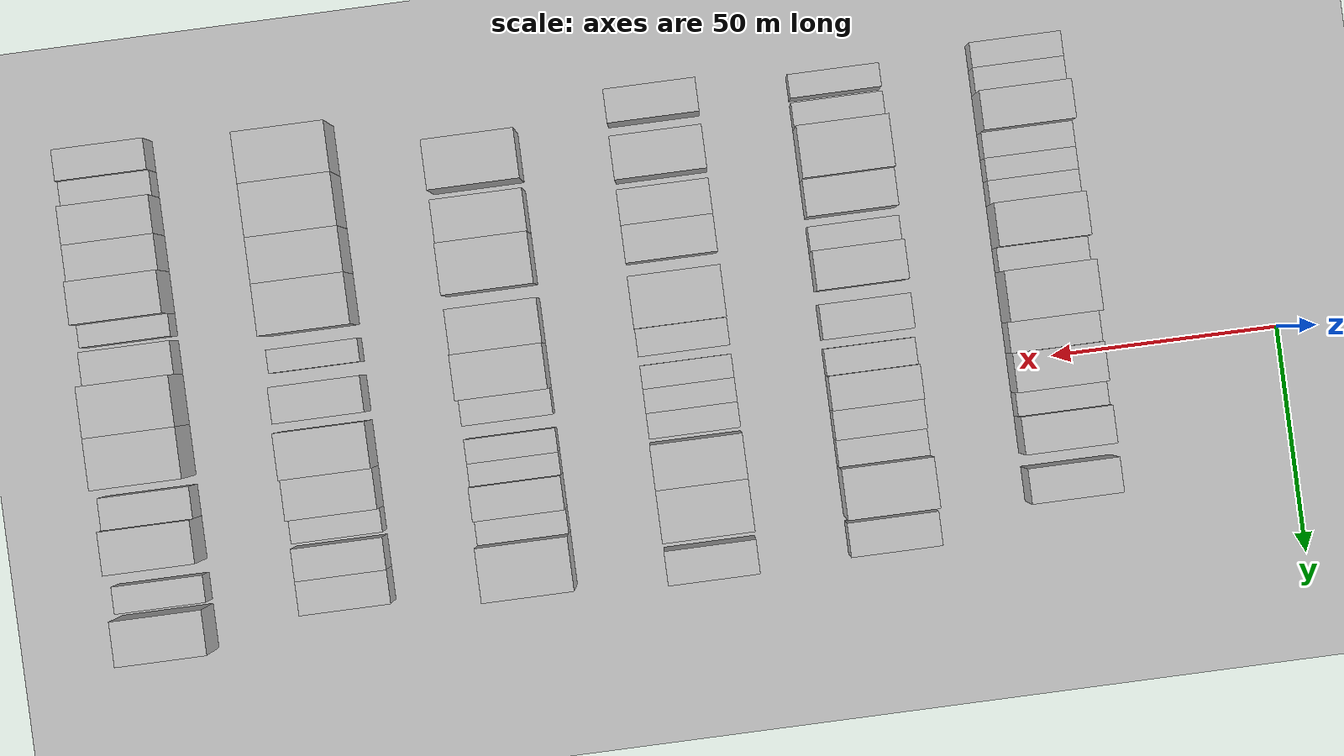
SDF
<sdf version="1.6">
 <world name="default">
  <include><name>ground_plane_1</name><uri>model://HANNAS_ground_plane</uri></include>
  <include>
   <name>ground_plane_2</name>
   <uri>model://HANNAS_ground_plane</uri>
   <pose>100 0 0  0 0 0</pose>
  </include>
  <model name="building_63">
   <static>1</static>
   <pose>50.0000 -67.2292 0 0.000000 0.000000 0.000000</pose>
   <link name="link">
    <pose>0 0 6.00 0 0 0</pose>
    <collision name="collision"><geometry><box><size>20.0000 5.4994 12.0000</size></box></geometry></collision>
    <visual name="visual">
     <cast_shadows>0</cast_shadows>
     <geometry><box><size>20.0000 5.4994 12.0000</size></box></geometry>
     <material>
      <script>
       <uri>model://HANNAS_wall/materials/scripts</uri>
       <uri>model://HANNAS_wall/materials/textures</uri>
       <name>vrc/HANNAS_wall</name>
      </script>
     </material>
    </visual>
   </link>
  </model>
  <model name="building_64">
   <static>1</static>
   <pose>50.0000 -61.6711 0 0.000000 0.000000 0.000000</pose>
   <link name="link">
    <pose>0 0 6.00 0 0 0</pose>
    <collision name="collision"><geometry><box><size>20.0000 5.6170 12.0000</size></box></geometry></collision>
    <visual name="visual">
     <cast_shadows>0</cast_shadows>
     <geometry><box><size>20.0000 5.6170 12.0000</size></box></geometry>
     <material>
      <script>
       <uri>model://HANNAS_wall/materials/scripts</uri>
       <uri>model://HANNAS_wall/materials/textures</uri>
       <name>vrc/HANNAS_wall</name>
      </script>
     </material>
    </visual>
   </link>
  </model>
  <model name="building_65">
   <static>1</static>
   <pose>50.0000 -54.5869 0 0.000000 0.000000 0.000000</pose>
   <link name="link">
    <pose>0 0 10.50 0 0 0</pose>
    <collision name="collision"><geometry><box><size>20.0000 8.5513 21.0000</size></box></geometry></collision>
    <visual name="visual">
     <cast_shadows>0</cast_shadows>
     <geometry><box><size>20.0000 8.5513 21.0000</size></box></geometry>
     <material>
      <script>
       <uri>model://HANNAS_wall/materials/scripts</uri>
       <uri>model://HANNAS_wall/materials/textures</uri>
       <name>vrc/HANNAS_wall</name>
      </script>
     </material>
    </visual>
   </link>
  </model>
  <model name="building_66">
   <static>1</static>
   <pose>50.0000 -47.4905 0 0.000000 0.000000 0.000000</pose>
   <link name="link">
    <pose>0 0 6.00 0 0 0</pose>
    <collision name="collision"><geometry><box><size>20.0000 5.6415 12.0000</size></box></geometry></collision>
    <visual name="visual">
     <cast_shadows>0</cast_shadows>
     <geometry><box><size>20.0000 5.6415 12.0000</size></box></geometry>
     <material>
      <script>
       <uri>model://HANNAS_wall/materials/scripts</uri>
       <uri>model://HANNAS_wall/materials/textures</uri>
       <name>vrc/HANNAS_wall</name>
      </script>
     </material>
    </visual>
   </link>
  </model>
  <model name="building_67">
   <static>1</static>
   <pose>50.0000 -42.1995 0 0.000000 0.000000 0.000000</pose>
   <link name="link">
    <pose>0 0 6.00 0 0 0</pose>
    <collision name="collision"><geometry><box><size>20.0000 4.9405 12.0000</size></box></geometry></collision>
    <visual name="visual">
     <cast_shadows>0</cast_shadows>
     <geometry><box><size>20.0000 4.9405 12.0000</size></box></geometry>
     <material>
      <script>
       <uri>model://HANNAS_wall/materials/scripts</uri>
       <uri>model://HANNAS_wall/materials/textures</uri>
       <name>vrc/HANNAS_wall</name>
      </script>
     </material>
    </visual>
   </link>
  </model>
  <model name="building_68">
   <static>1</static>
   <pose>50.0000 -37.1400 0 0.000000 0.000000 0.000000</pose>
   <link name="link">
    <pose>0 0 6.00 0 0 0</pose>
    <collision name="collision"><geometry><box><size>20.0000 5.1787 12.0000</size></box></geometry></collision>
    <visual name="visual">
     <cast_shadows>0</cast_shadows>
     <geometry><box><size>20.0000 5.1787 12.0000</size></box></geometry>
     <material>
      <script>
       <uri>model://HANNAS_wall/materials/scripts</uri>
       <uri>model://HANNAS_wall/materials/textures</uri>
       <name>vrc/HANNAS_wall</name>
      </script>
     </material>
    </visual>
   </link>
  </model>
  <model name="building_69">
   <static>1</static>
   <pose>50.0000 -29.8016 0 0.000000 0.000000 0.000000</pose>
   <link name="link">
    <pose>0 0 10.50 0 0 0</pose>
    <collision name="collision"><geometry><box><size>20.0000 9.4980 21.0000</size></box></geometry></collision>
    <visual name="visual">
     <cast_shadows>0</cast_shadows>
     <geometry><box><size>20.0000 9.4980 21.0000</size></box></geometry>
     <material>
      <script>
       <uri>model://HANNAS_wall/materials/scripts</uri>
       <uri>model://HANNAS_wall/materials/textures</uri>
       <name>vrc/HANNAS_wall</name>
      </script>
     </material>
    </visual>
   </link>
  </model>
  <model name="building_70">
   <static>1</static>
   <pose>50.0000 -22.4145 0 0.000000 0.000000 0.000000</pose>
   <link name="link">
    <pose>0 0 6.00 0 0 0</pose>
    <collision name="collision"><geometry><box><size>20.0000 5.2761 12.0000</size></box></geometry></collision>
    <visual name="visual">
     <cast_shadows>0</cast_shadows>
     <geometry><box><size>20.0000 5.2761 12.0000</size></box></geometry>
     <material>
      <script>
       <uri>model://HANNAS_wall/materials/scripts</uri>
       <uri>model://HANNAS_wall/materials/textures</uri>
       <name>vrc/HANNAS_wall</name>
      </script>
     </material>
    </visual>
   </link>
  </model>
  <model name="building_71">
   <static>1</static>
   <pose>50.0000 -14.2594 0 0.000000 0.000000 0.000000</pose>
   <link name="link">
    <pose>0 0 12.00 0 0 0</pose>
    <collision name="collision"><geometry><box><size>20.0000 11.0341 24.0000</size></box></geometry></collision>
    <visual name="visual">
     <cast_shadows>0</cast_shadows>
     <geometry><box><size>20.0000 11.0341 24.0000</size></box></geometry>
     <material>
      <script>
       <uri>model://HANNAS_wall/materials/scripts</uri>
       <uri>model://HANNAS_wall/materials/textures</uri>
       <name>vrc/HANNAS_wall</name>
      </script>
     </material>
    </visual>
   </link>
  </model>
  <model name="building_72">
   <static>1</static>
   <pose>50.0000 -5.3640 0 0.000000 0.000000 0.000000</pose>
   <link name="link">
    <pose>0 0 7.50 0 0 0</pose>
    <collision name="collision"><geometry><box><size>20.0000 6.7568 15.0000</size></box></geometry></collision>
    <visual name="visual">
     <cast_shadows>0</cast_shadows>
     <geometry><box><size>20.0000 6.7568 15.0000</size></box></geometry>
     <material>
      <script>
       <uri>model://HANNAS_wall/materials/scripts</uri>
       <uri>model://HANNAS_wall/materials/textures</uri>
       <name>vrc/HANNAS_wall</name>
      </script>
     </material>
    </visual>
   </link>
  </model>
  <model name="building_73">
   <static>1</static>
   <pose>50.0000 2.3063 0 0.000000 0.000000 0.000000</pose>
   <link name="link">
    <pose>0 0 9.00 0 0 0</pose>
    <collision name="collision"><geometry><box><size>20.0000 8.5839 18.0000</size></box></geometry></collision>
    <visual name="visual">
     <cast_shadows>0</cast_shadows>
     <geometry><box><size>20.0000 8.5839 18.0000</size></box></geometry>
     <material>
      <script>
       <uri>model://HANNAS_wall/materials/scripts</uri>
       <uri>model://HANNAS_wall/materials/textures</uri>
       <name>vrc/HANNAS_wall</name>
      </script>
     </material>
    </visual>
   </link>
  </model>
  <model name="building_74">
   <static>1</static>
   <pose>50.0000 9.2249 0 0.000000 0.000000 0.000000</pose>
   <link name="link">
    <pose>0 0 6.00 0 0 0</pose>
    <collision name="collision"><geometry><box><size>20.0000 5.2533 12.0000</size></box></geometry></collision>
    <visual name="visual">
     <cast_shadows>0</cast_shadows>
     <geometry><box><size>20.0000 5.2533 12.0000</size></box></geometry>
     <material>
      <script>
       <uri>model://HANNAS_wall/materials/scripts</uri>
       <uri>model://HANNAS_wall/materials/textures</uri>
       <name>vrc/HANNAS_wall</name>
      </script>
     </material>
    </visual>
   </link>
  </model>
  <model name="building_75">
   <static>1</static>
   <pose>50.0000 15.9710 0 0.000000 0.000000 0.000000</pose>
   <link name="link">
    <pose>0 0 9.00 0 0 0</pose>
    <collision name="collision"><geometry><box><size>20.0000 8.2388 18.0000</size></box></geometry></collision>
    <visual name="visual">
     <cast_shadows>0</cast_shadows>
     <geometry><box><size>20.0000 8.2388 18.0000</size></box></geometry>
     <material>
      <script>
       <uri>model://HANNAS_wall/materials/scripts</uri>
       <uri>model://HANNAS_wall/materials/textures</uri>
       <name>vrc/HANNAS_wall</name>
      </script>
     </material>
    </visual>
   </link>
  </model>
  <model name="building_76">
   <static>1</static>
   <pose>50.0000 26.9386 0 0.000000 0.000000 0.000000</pose>
   <link name="link">
    <pose>0 0 9.00 0 0 0</pose>
    <collision name="collision"><geometry><box><size>20.0000 7.6965 18.0000</size></box></geometry></collision>
    <visual name="visual">
     <cast_shadows>0</cast_shadows>
     <geometry><box><size>20.0000 7.6965 18.0000</size></box></geometry>
     <material>
      <script>
       <uri>model://HANNAS_wall/materials/scripts</uri>
       <uri>model://HANNAS_wall/materials/textures</uri>
       <name>vrc/HANNAS_wall</name>
      </script>
     </material>
    </visual>
   </link>
  </model>
  <model name="building_195">
   <static>1</static>
   <pose>90.0000 -65.6910 0 0.000000 0.000000 0.000000</pose>
   <link name="link">
    <pose>0 0 6.00 0 0 0</pose>
    <collision name="collision"><geometry><box><size>20.0000 5.1898 12.0000</size></box></geometry></collision>
    <visual name="visual">
     <cast_shadows>0</cast_shadows>
     <geometry><box><size>20.0000 5.1898 12.0000</size></box></geometry>
     <material>
      <script>
       <uri>model://HANNAS_wall/materials/scripts</uri>
       <uri>model://HANNAS_wall/materials/textures</uri>
       <name>vrc/HANNAS_wall</name>
      </script>
     </material>
    </visual>
   </link>
  </model>
  <model name="building_196">
   <static>1</static>
   <pose>90.0000 -59.2433 0 0.000000 0.000000 0.000000</pose>
   <link name="link">
    <pose>0 0 6.00 0 0 0</pose>
    <collision name="collision"><geometry><box><size>20.0000 5.7056 12.0000</size></box></geometry></collision>
    <visual name="visual">
     <cast_shadows>0</cast_shadows>
     <geometry><box><size>20.0000 5.7056 12.0000</size></box></geometry>
     <material>
      <script>
       <uri>model://HANNAS_wall/materials/scripts</uri>
       <uri>model://HANNAS_wall/materials/textures</uri>
       <name>vrc/HANNAS_wall</name>
      </script>
     </material>
    </visual>
   </link>
  </model>
  <model name="building_197">
   <static>1</static>
   <pose>90.0000 -50.7142 0 0.000000 0.000000 0.000000</pose>
   <link name="link">
    <pose>0 0 12.00 0 0 0</pose>
    <collision name="collision"><geometry><box><size>20.0000 11.3527 24.0000</size></box></geometry></collision>
    <visual name="visual">
     <cast_shadows>0</cast_shadows>
     <geometry><box><size>20.0000 11.3527 24.0000</size></box></geometry>
     <material>
      <script>
       <uri>model://HANNAS_wall/materials/scripts</uri>
       <uri>model://HANNAS_wall/materials/textures</uri>
       <name>vrc/HANNAS_wall</name>
      </script>
     </material>
    </visual>
   </link>
  </model>
  <model name="building_198">
   <static>1</static>
   <pose>90.0000 -40.9774 0 0.000000 0.000000 0.000000</pose>
   <link name="link">
    <pose>0 0 9.00 0 0 0</pose>
    <collision name="collision"><geometry><box><size>20.0000 8.1209 18.0000</size></box></geometry></collision>
    <visual name="visual">
     <cast_shadows>0</cast_shadows>
     <geometry><box><size>20.0000 8.1209 18.0000</size></box></geometry>
     <material>
      <script>
       <uri>model://HANNAS_wall/materials/scripts</uri>
       <uri>model://HANNAS_wall/materials/textures</uri>
       <name>vrc/HANNAS_wall</name>
      </script>
     </material>
    </visual>
   </link>
  </model>
  <model name="building_199">
   <static>1</static>
   <pose>90.0000 -32.1751 0 0.000000 0.000000 0.000000</pose>
   <link name="link">
    <pose>0 0 6.00 0 0 0</pose>
    <collision name="collision"><geometry><box><size>20.0000 5.4838 12.0000</size></box></geometry></collision>
    <visual name="visual">
     <cast_shadows>0</cast_shadows>
     <geometry><box><size>20.0000 5.4838 12.0000</size></box></geometry>
     <material>
      <script>
       <uri>model://HANNAS_wall/materials/scripts</uri>
       <uri>model://HANNAS_wall/materials/textures</uri>
       <name>vrc/HANNAS_wall</name>
      </script>
     </material>
    </visual>
   </link>
  </model>
  <model name="building_200">
   <static>1</static>
   <pose>90.0000 -25.1378 0 0.000000 0.000000 0.000000</pose>
   <link name="link">
    <pose>0 0 10.50 0 0 0</pose>
    <collision name="collision"><geometry><box><size>20.0000 8.5907 21.0000</size></box></geometry></collision>
    <visual name="visual">
     <cast_shadows>0</cast_shadows>
     <geometry><box><size>20.0000 8.5907 21.0000</size></box></geometry>
     <material>
      <script>
       <uri>model://HANNAS_wall/materials/scripts</uri>
       <uri>model://HANNAS_wall/materials/textures</uri>
       <name>vrc/HANNAS_wall</name>
      </script>
     </material>
    </visual>
   </link>
  </model>
  <model name="building_201">
   <static>1</static>
   <pose>90.0000 -14.0158 0 0.000000 0.000000 0.000000</pose>
   <link name="link">
    <pose>0 0 9.00 0 0 0</pose>
    <collision name="collision"><geometry><box><size>20.0000 7.6533 18.0000</size></box></geometry></collision>
    <visual name="visual">
     <cast_shadows>0</cast_shadows>
     <geometry><box><size>20.0000 7.6533 18.0000</size></box></geometry>
     <material>
      <script>
       <uri>model://HANNAS_wall/materials/scripts</uri>
       <uri>model://HANNAS_wall/materials/textures</uri>
       <name>vrc/HANNAS_wall</name>
      </script>
     </material>
    </visual>
   </link>
  </model>
  <model name="building_202">
   <static>1</static>
   <pose>90.0000 -5.2425 0 0.000000 0.000000 0.000000</pose>
   <link name="link">
    <pose>0 0 6.00 0 0 0</pose>
    <collision name="collision"><geometry><box><size>20.0000 5.8933 12.0000</size></box></geometry></collision>
    <visual name="visual">
     <cast_shadows>0</cast_shadows>
     <geometry><box><size>20.0000 5.8933 12.0000</size></box></geometry>
     <material>
      <script>
       <uri>model://HANNAS_wall/materials/scripts</uri>
       <uri>model://HANNAS_wall/materials/textures</uri>
       <name>vrc/HANNAS_wall</name>
      </script>
     </material>
    </visual>
   </link>
  </model>
  <model name="building_203">
   <static>1</static>
   <pose>90.0000 1.4706 0 0.000000 0.000000 0.000000</pose>
   <link name="link">
    <pose>0 0 9.00 0 0 0</pose>
    <collision name="collision"><geometry><box><size>20.0000 7.5330 18.0000</size></box></geometry></collision>
    <visual name="visual">
     <cast_shadows>0</cast_shadows>
     <geometry><box><size>20.0000 7.5330 18.0000</size></box></geometry>
     <material>
      <script>
       <uri>model://HANNAS_wall/materials/scripts</uri>
       <uri>model://HANNAS_wall/materials/textures</uri>
       <name>vrc/HANNAS_wall</name>
      </script>
     </material>
    </visual>
   </link>
  </model>
  <model name="building_204">
   <static>1</static>
   <pose>90.0000 8.4892 0 0.000000 0.000000 0.000000</pose>
   <link name="link">
    <pose>0 0 7.50 0 0 0</pose>
    <collision name="collision"><geometry><box><size>20.0000 6.5042 15.0000</size></box></geometry></collision>
    <visual name="visual">
     <cast_shadows>0</cast_shadows>
     <geometry><box><size>20.0000 6.5042 15.0000</size></box></geometry>
     <material>
      <script>
       <uri>model://HANNAS_wall/materials/scripts</uri>
       <uri>model://HANNAS_wall/materials/textures</uri>
       <name>vrc/HANNAS_wall</name>
      </script>
     </material>
    </visual>
   </link>
  </model>
  <model name="building_205">
   <static>1</static>
   <pose>90.0000 14.6961 0 0.000000 0.000000 0.000000</pose>
   <link name="link">
    <pose>0 0 6.00 0 0 0</pose>
    <collision name="collision"><geometry><box><size>20.0000 5.9096 12.0000</size></box></geometry></collision>
    <visual name="visual">
     <cast_shadows>0</cast_shadows>
     <geometry><box><size>20.0000 5.9096 12.0000</size></box></geometry>
     <material>
      <script>
       <uri>model://HANNAS_wall/materials/scripts</uri>
       <uri>model://HANNAS_wall/materials/textures</uri>
       <name>vrc/HANNAS_wall</name>
      </script>
     </material>
    </visual>
   </link>
  </model>
  <model name="building_206">
   <static>1</static>
   <pose>90.0000 23.1987 0 0.000000 0.000000 0.000000</pose>
   <link name="link">
    <pose>0 0 12.00 0 0 0</pose>
    <collision name="collision"><geometry><box><size>20.0000 11.0955 24.0000</size></box></geometry></collision>
    <visual name="visual">
     <cast_shadows>0</cast_shadows>
     <geometry><box><size>20.0000 11.0955 24.0000</size></box></geometry>
     <material>
      <script>
       <uri>model://HANNAS_wall/materials/scripts</uri>
       <uri>model://HANNAS_wall/materials/textures</uri>
       <name>vrc/HANNAS_wall</name>
      </script>
     </material>
    </visual>
   </link>
  </model>
  <model name="building_207">
   <static>1</static>
   <pose>90.0000 33.4840 0 0.000000 0.000000 0.000000</pose>
   <link name="link">
    <pose>0 0 7.50 0 0 0</pose>
    <collision name="collision"><geometry><box><size>20.0000 7.4749 15.0000</size></box></geometry></collision>
    <visual name="visual">
     <cast_shadows>0</cast_shadows>
     <geometry><box><size>20.0000 7.4749 15.0000</size></box></geometry>
     <material>
      <script>
       <uri>model://HANNAS_wall/materials/scripts</uri>
       <uri>model://HANNAS_wall/materials/textures</uri>
       <name>vrc/HANNAS_wall</name>
      </script>
     </material>
    </visual>
   </link>
  </model>
  <model name="building_322">
   <static>1</static>
   <pose>130.0000 -66.2679 0 0.000000 0.000000 0.000000</pose>
   <link name="link">
    <pose>0 0 9.00 0 0 0</pose>
    <collision name="collision"><geometry><box><size>20.0000 7.3738 18.0000</size></box></geometry></collision>
    <visual name="visual">
     <cast_shadows>0</cast_shadows>
     <geometry><box><size>20.0000 7.3738 18.0000</size></box></geometry>
     <material>
      <script>
       <uri>model://HANNAS_wall/materials/scripts</uri>
       <uri>model://HANNAS_wall/materials/textures</uri>
       <name>vrc/HANNAS_wall</name>
      </script>
     </material>
    </visual>
   </link>
  </model>
  <model name="building_323">
   <static>1</static>
   <pose>130.0000 -54.8424 0 0.000000 0.000000 0.000000</pose>
   <link name="link">
    <pose>0 0 10.50 0 0 0</pose>
    <collision name="collision"><geometry><box><size>20.0000 9.4772 21.0000</size></box></geometry></collision>
    <visual name="visual">
     <cast_shadows>0</cast_shadows>
     <geometry><box><size>20.0000 9.4772 21.0000</size></box></geometry>
     <material>
      <script>
       <uri>model://HANNAS_wall/materials/scripts</uri>
       <uri>model://HANNAS_wall/materials/textures</uri>
       <name>vrc/HANNAS_wall</name>
      </script>
     </material>
    </visual>
   </link>
  </model>
  <model name="building_324">
   <static>1</static>
   <pose>130.0000 -44.2310 0 0.000000 0.000000 0.000000</pose>
   <link name="link">
    <pose>0 0 9.00 0 0 0</pose>
    <collision name="collision"><geometry><box><size>20.0000 7.7457 18.0000</size></box></geometry></collision>
    <visual name="visual">
     <cast_shadows>0</cast_shadows>
     <geometry><box><size>20.0000 7.7457 18.0000</size></box></geometry>
     <material>
      <script>
       <uri>model://HANNAS_wall/materials/scripts</uri>
       <uri>model://HANNAS_wall/materials/textures</uri>
       <name>vrc/HANNAS_wall</name>
      </script>
     </material>
    </visual>
   </link>
  </model>
  <model name="building_325">
   <static>1</static>
   <pose>130.0000 -36.2648 0 0.000000 0.000000 0.000000</pose>
   <link name="link">
    <pose>0 0 9.00 0 0 0</pose>
    <collision name="collision"><geometry><box><size>20.0000 8.1866 18.0000</size></box></geometry></collision>
    <visual name="visual">
     <cast_shadows>0</cast_shadows>
     <geometry><box><size>20.0000 8.1866 18.0000</size></box></geometry>
     <material>
      <script>
       <uri>model://HANNAS_wall/materials/scripts</uri>
       <uri>model://HANNAS_wall/materials/textures</uri>
       <name>vrc/HANNAS_wall</name>
      </script>
     </material>
    </visual>
   </link>
  </model>
  <model name="building_326">
   <static>1</static>
   <pose>130.0000 -23.5056 0 0.000000 0.000000 0.000000</pose>
   <link name="link">
    <pose>0 0 12.00 0 0 0</pose>
    <collision name="collision"><geometry><box><size>20.0000 11.3318 24.0000</size></box></geometry></collision>
    <visual name="visual">
     <cast_shadows>0</cast_shadows>
     <geometry><box><size>20.0000 11.3318 24.0000</size></box></geometry>
     <material>
      <script>
       <uri>model://HANNAS_wall/materials/scripts</uri>
       <uri>model://HANNAS_wall/materials/textures</uri>
       <name>vrc/HANNAS_wall</name>
      </script>
     </material>
    </visual>
   </link>
  </model>
  <model name="building_327">
   <static>1</static>
   <pose>130.0000 -14.8278 0 0.000000 0.000000 0.000000</pose>
   <link name="link">
    <pose>0 0 7.50 0 0 0</pose>
    <collision name="collision"><geometry><box><size>20.0000 6.0238 15.0000</size></box></geometry></collision>
    <visual name="visual">
     <cast_shadows>0</cast_shadows>
     <geometry><box><size>20.0000 6.0238 15.0000</size></box></geometry>
     <material>
      <script>
       <uri>model://HANNAS_wall/materials/scripts</uri>
       <uri>model://HANNAS_wall/materials/textures</uri>
       <name>vrc/HANNAS_wall</name>
      </script>
     </material>
    </visual>
   </link>
  </model>
  <model name="building_328">
   <static>1</static>
   <pose>130.0000 -7.2566 0 0.000000 0.000000 0.000000</pose>
   <link name="link">
    <pose>0 0 6.00 0 0 0</pose>
    <collision name="collision"><geometry><box><size>20.0000 5.1187 12.0000</size></box></geometry></collision>
    <visual name="visual">
     <cast_shadows>0</cast_shadows>
     <geometry><box><size>20.0000 5.1187 12.0000</size></box></geometry>
     <material>
      <script>
       <uri>model://HANNAS_wall/materials/scripts</uri>
       <uri>model://HANNAS_wall/materials/textures</uri>
       <name>vrc/HANNAS_wall</name>
      </script>
     </material>
    </visual>
   </link>
  </model>
  <model name="building_329">
   <static>1</static>
   <pose>130.0000 -2.0461 0 0.000000 0.000000 0.000000</pose>
   <link name="link">
    <pose>0 0 6.00 0 0 0</pose>
    <collision name="collision"><geometry><box><size>20.0000 5.3021 12.0000</size></box></geometry></collision>
    <visual name="visual">
     <cast_shadows>0</cast_shadows>
     <geometry><box><size>20.0000 5.3021 12.0000</size></box></geometry>
     <material>
      <script>
       <uri>model://HANNAS_wall/materials/scripts</uri>
       <uri>model://HANNAS_wall/materials/textures</uri>
       <name>vrc/HANNAS_wall</name>
      </script>
     </material>
    </visual>
   </link>
  </model>
  <model name="building_330">
   <static>1</static>
   <pose>130.0000 3.3998 0 0.000000 0.000000 0.000000</pose>
   <link name="link">
    <pose>0 0 6.00 0 0 0</pose>
    <collision name="collision"><geometry><box><size>20.0000 5.5897 12.0000</size></box></geometry></collision>
    <visual name="visual">
     <cast_shadows>0</cast_shadows>
     <geometry><box><size>20.0000 5.5897 12.0000</size></box></geometry>
     <material>
      <script>
       <uri>model://HANNAS_wall/materials/scripts</uri>
       <uri>model://HANNAS_wall/materials/textures</uri>
       <name>vrc/HANNAS_wall</name>
      </script>
     </material>
    </visual>
   </link>
  </model>
  <model name="building_331">
   <static>1</static>
   <pose>130.0000 12.1239 0 0.000000 0.000000 0.000000</pose>
   <link name="link">
    <pose>0 0 12.00 0 0 0</pose>
    <collision name="collision"><geometry><box><size>20.0000 9.8585 24.0000</size></box></geometry></collision>
    <visual name="visual">
     <cast_shadows>0</cast_shadows>
     <geometry><box><size>20.0000 9.8585 24.0000</size></box></geometry>
     <material>
      <script>
       <uri>model://HANNAS_wall/materials/scripts</uri>
       <uri>model://HANNAS_wall/materials/textures</uri>
       <name>vrc/HANNAS_wall</name>
      </script>
     </material>
    </visual>
   </link>
  </model>
  <model name="building_332">
   <static>1</static>
   <pose>130.0000 22.7426 0 0.000000 0.000000 0.000000</pose>
   <link name="link">
    <pose>0 0 12.00 0 0 0</pose>
    <collision name="collision"><geometry><box><size>20.0000 11.3790 24.0000</size></box></geometry></collision>
    <visual name="visual">
     <cast_shadows>0</cast_shadows>
     <geometry><box><size>20.0000 11.3790 24.0000</size></box></geometry>
     <material>
      <script>
       <uri>model://HANNAS_wall/materials/scripts</uri>
       <uri>model://HANNAS_wall/materials/textures</uri>
       <name>vrc/HANNAS_wall</name>
      </script>
     </material>
    </visual>
   </link>
  </model>
  <model name="building_333">
   <static>1</static>
   <pose>130.0000 34.1772 0 0.000000 0.000000 0.000000</pose>
   <link name="link">
    <pose>0 0 9.00 0 0 0</pose>
    <collision name="collision"><geometry><box><size>20.0000 7.4901 18.0000</size></box></geometry></collision>
    <visual name="visual">
     <cast_shadows>0</cast_shadows>
     <geometry><box><size>20.0000 7.4901 18.0000</size></box></geometry>
     <material>
      <script>
       <uri>model://HANNAS_wall/materials/scripts</uri>
       <uri>model://HANNAS_wall/materials/textures</uri>
       <name>vrc/HANNAS_wall</name>
      </script>
     </material>
    </visual>
   </link>
  </model>
  <model name="building_468">
   <static>1</static>
   <pose>170.0000 -58.5311 0 0.000000 0.000000 0.000000</pose>
   <link name="link">
    <pose>0 0 12.00 0 0 0</pose>
    <collision name="collision"><geometry><box><size>20.0000 10.8672 24.0000</size></box></geometry></collision>
    <visual name="visual">
     <cast_shadows>0</cast_shadows>
     <geometry><box><size>20.0000 10.8672 24.0000</size></box></geometry>
     <material>
      <script>
       <uri>model://HANNAS_wall/materials/scripts</uri>
       <uri>model://HANNAS_wall/materials/textures</uri>
       <name>vrc/HANNAS_wall</name>
      </script>
     </material>
    </visual>
   </link>
  </model>
  <model name="building_469">
   <static>1</static>
   <pose>170.0000 -46.3842 0 0.000000 0.000000 0.000000</pose>
   <link name="link">
    <pose>0 0 10.50 0 0 0</pose>
    <collision name="collision"><geometry><box><size>20.0000 9.4264 21.0000</size></box></geometry></collision>
    <visual name="visual">
     <cast_shadows>0</cast_shadows>
     <geometry><box><size>20.0000 9.4264 21.0000</size></box></geometry>
     <material>
      <script>
       <uri>model://HANNAS_wall/materials/scripts</uri>
       <uri>model://HANNAS_wall/materials/textures</uri>
       <name>vrc/HANNAS_wall</name>
      </script>
     </material>
    </visual>
   </link>
  </model>
  <model name="building_470">
   <static>1</static>
   <pose>170.0000 -36.0345 0 0.000000 0.000000 0.000000</pose>
   <link name="link">
    <pose>0 0 12.00 0 0 0</pose>
    <collision name="collision"><geometry><box><size>20.0000 11.2730 24.0000</size></box></geometry></collision>
    <visual name="visual">
     <cast_shadows>0</cast_shadows>
     <geometry><box><size>20.0000 11.2730 24.0000</size></box></geometry>
     <material>
      <script>
       <uri>model://HANNAS_wall/materials/scripts</uri>
       <uri>model://HANNAS_wall/materials/textures</uri>
       <name>vrc/HANNAS_wall</name>
      </script>
     </material>
    </visual>
   </link>
  </model>
  <model name="building_471">
   <static>1</static>
   <pose>170.0000 -22.4796 0 0.000000 0.000000 0.000000</pose>
   <link name="link">
    <pose>0 0 10.50 0 0 0</pose>
    <collision name="collision"><geometry><box><size>20.0000 9.8370 21.0000</size></box></geometry></collision>
    <visual name="visual">
     <cast_shadows>0</cast_shadows>
     <geometry><box><size>20.0000 9.8370 21.0000</size></box></geometry>
     <material>
      <script>
       <uri>model://HANNAS_wall/materials/scripts</uri>
       <uri>model://HANNAS_wall/materials/textures</uri>
       <name>vrc/HANNAS_wall</name>
      </script>
     </material>
    </visual>
   </link>
  </model>
  <model name="building_472">
   <static>1</static>
   <pose>170.0000 -12.6040 0 0.000000 0.000000 0.000000</pose>
   <link name="link">
    <pose>0 0 12.00 0 0 0</pose>
    <collision name="collision"><geometry><box><size>20.0000 9.9141 24.0000</size></box></geometry></collision>
    <visual name="visual">
     <cast_shadows>0</cast_shadows>
     <geometry><box><size>20.0000 9.9141 24.0000</size></box></geometry>
     <material>
      <script>
       <uri>model://HANNAS_wall/materials/scripts</uri>
       <uri>model://HANNAS_wall/materials/textures</uri>
       <name>vrc/HANNAS_wall</name>
      </script>
     </material>
    </visual>
   </link>
  </model>
  <model name="building_473">
   <static>1</static>
   <pose>170.0000 -4.7894 0 0.000000 0.000000 0.000000</pose>
   <link name="link">
    <pose>0 0 6.00 0 0 0</pose>
    <collision name="collision"><geometry><box><size>20.0000 5.7152 12.0000</size></box></geometry></collision>
    <visual name="visual">
     <cast_shadows>0</cast_shadows>
     <geometry><box><size>20.0000 5.7152 12.0000</size></box></geometry>
     <material>
      <script>
       <uri>model://HANNAS_wall/materials/scripts</uri>
       <uri>model://HANNAS_wall/materials/textures</uri>
       <name>vrc/HANNAS_wall</name>
      </script>
     </material>
    </visual>
   </link>
  </model>
  <model name="building_474">
   <static>1</static>
   <pose>170.0000 3.7119 0 0.000000 0.000000 0.000000</pose>
   <link name="link">
    <pose>0 0 6.00 0 0 0</pose>
    <collision name="collision"><geometry><box><size>20.0000 5.2874 12.0000</size></box></geometry></collision>
    <visual name="visual">
     <cast_shadows>0</cast_shadows>
     <geometry><box><size>20.0000 5.2874 12.0000</size></box></geometry>
     <material>
      <script>
       <uri>model://HANNAS_wall/materials/scripts</uri>
       <uri>model://HANNAS_wall/materials/textures</uri>
       <name>vrc/HANNAS_wall</name>
      </script>
     </material>
    </visual>
   </link>
  </model>
  <model name="building_475">
   <static>1</static>
   <pose>170.0000 8.8420 0 0.000000 0.000000 0.000000</pose>
   <link name="link">
    <pose>0 0 6.00 0 0 0</pose>
    <collision name="collision"><geometry><box><size>20.0000 4.9727 12.0000</size></box></geometry></collision>
    <visual name="visual">
     <cast_shadows>0</cast_shadows>
     <geometry><box><size>20.0000 4.9727 12.0000</size></box></geometry>
     <material>
      <script>
       <uri>model://HANNAS_wall/materials/scripts</uri>
       <uri>model://HANNAS_wall/materials/textures</uri>
       <name>vrc/HANNAS_wall</name>
      </script>
     </material>
    </visual>
   </link>
  </model>
  <model name="building_476">
   <static>1</static>
   <pose>170.0000 15.0333 0 0.000000 0.000000 0.000000</pose>
   <link name="link">
    <pose>0 0 9.00 0 0 0</pose>
    <collision name="collision"><geometry><box><size>20.0000 7.4100 18.0000</size></box></geometry></collision>
    <visual name="visual">
     <cast_shadows>0</cast_shadows>
     <geometry><box><size>20.0000 7.4100 18.0000</size></box></geometry>
     <material>
      <script>
       <uri>model://HANNAS_wall/materials/scripts</uri>
       <uri>model://HANNAS_wall/materials/textures</uri>
       <name>vrc/HANNAS_wall</name>
      </script>
     </material>
    </visual>
   </link>
  </model>
  <model name="building_477">
   <static>1</static>
   <pose>170.0000 21.4627 0 0.000000 0.000000 0.000000</pose>
   <link name="link">
    <pose>0 0 6.00 0 0 0</pose>
    <collision name="collision"><geometry><box><size>20.0000 5.4487 12.0000</size></box></geometry></collision>
    <visual name="visual">
     <cast_shadows>0</cast_shadows>
     <geometry><box><size>20.0000 5.4487 12.0000</size></box></geometry>
     <material>
      <script>
       <uri>model://HANNAS_wall/materials/scripts</uri>
       <uri>model://HANNAS_wall/materials/textures</uri>
       <name>vrc/HANNAS_wall</name>
      </script>
     </material>
    </visual>
   </link>
  </model>
  <model name="building_478">
   <static>1</static>
   <pose>170.0000 30.0970 0 0.000000 0.000000 0.000000</pose>
   <link name="link">
    <pose>0 0 12.00 0 0 0</pose>
    <collision name="collision"><geometry><box><size>20.0000 11.8199 24.0000</size></box></geometry></collision>
    <visual name="visual">
     <cast_shadows>0</cast_shadows>
     <geometry><box><size>20.0000 11.8199 24.0000</size></box></geometry>
     <material>
      <script>
       <uri>model://HANNAS_wall/materials/scripts</uri>
       <uri>model://HANNAS_wall/materials/textures</uri>
       <name>vrc/HANNAS_wall</name>
      </script>
     </material>
    </visual>
   </link>
  </model>
  <model name="building_610">
   <static>1</static>
   <pose>210.0000 -65.3366 0 0.000000 0.000000 0.000000</pose>
   <link name="link">
    <pose>0 0 12.00 0 0 0</pose>
    <collision name="collision"><geometry><box><size>20.0000 11.1190 24.0000</size></box></geometry></collision>
    <visual name="visual">
     <cast_shadows>0</cast_shadows>
     <geometry><box><size>20.0000 11.1190 24.0000</size></box></geometry>
     <material>
      <script>
       <uri>model://HANNAS_wall/materials/scripts</uri>
       <uri>model://HANNAS_wall/materials/textures</uri>
       <name>vrc/HANNAS_wall</name>
      </script>
     </material>
    </visual>
   </link>
  </model>
  <model name="building_611">
   <static>1</static>
   <pose>210.0000 -53.9626 0 0.000000 0.000000 0.000000</pose>
   <link name="link">
    <pose>0 0 12.00 0 0 0</pose>
    <collision name="collision"><geometry><box><size>20.0000 11.6291 24.0000</size></box></geometry></collision>
    <visual name="visual">
     <cast_shadows>0</cast_shadows>
     <geometry><box><size>20.0000 11.6291 24.0000</size></box></geometry>
     <material>
      <script>
       <uri>model://HANNAS_wall/materials/scripts</uri>
       <uri>model://HANNAS_wall/materials/textures</uri>
       <name>vrc/HANNAS_wall</name>
      </script>
     </material>
    </visual>
   </link>
  </model>
  <model name="building_612">
   <static>1</static>
   <pose>210.0000 -43.1508 0 0.000000 0.000000 0.000000</pose>
   <link name="link">
    <pose>0 0 12.00 0 0 0</pose>
    <collision name="collision"><geometry><box><size>20.0000 9.9944 24.0000</size></box></geometry></collision>
    <visual name="visual">
     <cast_shadows>0</cast_shadows>
     <geometry><box><size>20.0000 9.9944 24.0000</size></box></geometry>
     <material>
      <script>
       <uri>model://HANNAS_wall/materials/scripts</uri>
       <uri>model://HANNAS_wall/materials/textures</uri>
       <name>vrc/HANNAS_wall</name>
      </script>
     </material>
    </visual>
   </link>
  </model>
  <model name="building_613">
   <static>1</static>
   <pose>210.0000 -32.5335 0 0.000000 0.000000 0.000000</pose>
   <link name="link">
    <pose>0 0 12.00 0 0 0</pose>
    <collision name="collision"><geometry><box><size>20.0000 11.2402 24.0000</size></box></geometry></collision>
    <visual name="visual">
     <cast_shadows>0</cast_shadows>
     <geometry><box><size>20.0000 11.2402 24.0000</size></box></geometry>
     <material>
      <script>
       <uri>model://HANNAS_wall/materials/scripts</uri>
       <uri>model://HANNAS_wall/materials/textures</uri>
       <name>vrc/HANNAS_wall</name>
      </script>
     </material>
    </visual>
   </link>
  </model>
  <model name="building_614">
   <static>1</static>
   <pose>210.0000 -21.3445 0 0.000000 0.000000 0.000000</pose>
   <link name="link">
    <pose>0 0 6.00 0 0 0</pose>
    <collision name="collision"><geometry><box><size>20.0000 5.1379 12.0000</size></box></geometry></collision>
    <visual name="visual">
     <cast_shadows>0</cast_shadows>
     <geometry><box><size>20.0000 5.1379 12.0000</size></box></geometry>
     <material>
      <script>
       <uri>model://HANNAS_wall/materials/scripts</uri>
       <uri>model://HANNAS_wall/materials/textures</uri>
       <name>vrc/HANNAS_wall</name>
      </script>
     </material>
    </visual>
   </link>
  </model>
  <model name="building_615">
   <static>1</static>
   <pose>210.0000 -11.7993 0 0.000000 0.000000 0.000000</pose>
   <link name="link">
    <pose>0 0 9.00 0 0 0</pose>
    <collision name="collision"><geometry><box><size>20.0000 7.9525 18.0000</size></box></geometry></collision>
    <visual name="visual">
     <cast_shadows>0</cast_shadows>
     <geometry><box><size>20.0000 7.9525 18.0000</size></box></geometry>
     <material>
      <script>
       <uri>model://HANNAS_wall/materials/scripts</uri>
       <uri>model://HANNAS_wall/materials/textures</uri>
       <name>vrc/HANNAS_wall</name>
      </script>
     </material>
    </visual>
   </link>
  </model>
  <model name="building_616">
   <static>1</static>
   <pose>210.0000 -0.7358 0 0.000000 0.000000 0.000000</pose>
   <link name="link">
    <pose>0 0 10.50 0 0 0</pose>
    <collision name="collision"><geometry><box><size>20.0000 10.1746 21.0000</size></box></geometry></collision>
    <visual name="visual">
     <cast_shadows>0</cast_shadows>
     <geometry><box><size>20.0000 10.1746 21.0000</size></box></geometry>
     <material>
      <script>
       <uri>model://HANNAS_wall/materials/scripts</uri>
       <uri>model://HANNAS_wall/materials/textures</uri>
       <name>vrc/HANNAS_wall</name>
      </script>
     </material>
    </visual>
   </link>
  </model>
  <model name="building_617">
   <static>1</static>
   <pose>210.0000 8.8121 0 0.000000 0.000000 0.000000</pose>
   <link name="link">
    <pose>0 0 9.00 0 0 0</pose>
    <collision name="collision"><geometry><box><size>20.0000 8.9213 18.0000</size></box></geometry></collision>
    <visual name="visual">
     <cast_shadows>0</cast_shadows>
     <geometry><box><size>20.0000 8.9213 18.0000</size></box></geometry>
     <material>
      <script>
       <uri>model://HANNAS_wall/materials/scripts</uri>
       <uri>model://HANNAS_wall/materials/textures</uri>
       <name>vrc/HANNAS_wall</name>
      </script>
     </material>
    </visual>
   </link>
  </model>
  <model name="building_618">
   <static>1</static>
   <pose>210.0000 15.9009 0 0.000000 0.000000 0.000000</pose>
   <link name="link">
    <pose>0 0 6.00 0 0 0</pose>
    <collision name="collision"><geometry><box><size>20.0000 5.2563 12.0000</size></box></geometry></collision>
    <visual name="visual">
     <cast_shadows>0</cast_shadows>
     <geometry><box><size>20.0000 5.2563 12.0000</size></box></geometry>
     <material>
      <script>
       <uri>model://HANNAS_wall/materials/scripts</uri>
       <uri>model://HANNAS_wall/materials/textures</uri>
       <name>vrc/HANNAS_wall</name>
      </script>
     </material>
    </visual>
   </link>
  </model>
  <model name="building_619">
   <static>1</static>
   <pose>210.0000 23.0809 0 0.000000 0.000000 0.000000</pose>
   <link name="link">
    <pose>0 0 7.50 0 0 0</pose>
    <collision name="collision"><geometry><box><size>20.0000 7.1037 15.0000</size></box></geometry></collision>
    <visual name="visual">
     <cast_shadows>0</cast_shadows>
     <geometry><box><size>20.0000 7.1037 15.0000</size></box></geometry>
     <material>
      <script>
       <uri>model://HANNAS_wall/materials/scripts</uri>
       <uri>model://HANNAS_wall/materials/textures</uri>
       <name>vrc/HANNAS_wall</name>
      </script>
     </material>
    </visual>
   </link>
  </model>
  <model name="building_620">
   <static>1</static>
   <pose>210.0000 30.3391 0 0.000000 0.000000 0.000000</pose>
   <link name="link">
    <pose>0 0 7.50 0 0 0</pose>
    <collision name="collision"><geometry><box><size>20.0000 7.4126 15.0000</size></box></geometry></collision>
    <visual name="visual">
     <cast_shadows>0</cast_shadows>
     <geometry><box><size>20.0000 7.4126 15.0000</size></box></geometry>
     <material>
      <script>
       <uri>model://HANNAS_wall/materials/scripts</uri>
       <uri>model://HANNAS_wall/materials/textures</uri>
       <name>vrc/HANNAS_wall</name>
      </script>
     </material>
    </visual>
   </link>
  </model>
  <model name="building_738">
   <static>1</static>
   <pose>250.0000 -69.4210 0 0.000000 0.000000 0.000000</pose>
   <link name="link">
    <pose>0 0 7.50 0 0 0</pose>
    <collision name="collision"><geometry><box><size>20.0000 6.8569 15.0000</size></box></geometry></collision>
    <visual name="visual">
     <cast_shadows>0</cast_shadows>
     <geometry><box><size>20.0000 6.8569 15.0000</size></box></geometry>
     <material>
      <script>
       <uri>model://HANNAS_wall/materials/scripts</uri>
       <uri>model://HANNAS_wall/materials/textures</uri>
       <name>vrc/HANNAS_wall</name>
      </script>
     </material>
    </visual>
   </link>
  </model>
  <model name="building_739">
   <static>1</static>
   <pose>250.0000 -63.1807 0 0.000000 0.000000 0.000000</pose>
   <link name="link">
    <pose>0 0 6.00 0 0 0</pose>
    <collision name="collision"><geometry><box><size>20.0000 5.6236 12.0000</size></box></geometry></collision>
    <visual name="visual">
     <cast_shadows>0</cast_shadows>
     <geometry><box><size>20.0000 5.6236 12.0000</size></box></geometry>
     <material>
      <script>
       <uri>model://HANNAS_wall/materials/scripts</uri>
       <uri>model://HANNAS_wall/materials/textures</uri>
       <name>vrc/HANNAS_wall</name>
      </script>
     </material>
    </visual>
   </link>
  </model>
  <model name="building_740">
   <static>1</static>
   <pose>250.0000 -56.1505 0 0.000000 0.000000 0.000000</pose>
   <link name="link">
    <pose>0 0 9.00 0 0 0</pose>
    <collision name="collision"><geometry><box><size>20.0000 8.4369 18.0000</size></box></geometry></collision>
    <visual name="visual">
     <cast_shadows>0</cast_shadows>
     <geometry><box><size>20.0000 8.4369 18.0000</size></box></geometry>
     <material>
      <script>
       <uri>model://HANNAS_wall/materials/scripts</uri>
       <uri>model://HANNAS_wall/materials/textures</uri>
       <name>vrc/HANNAS_wall</name>
      </script>
     </material>
    </visual>
   </link>
  </model>
  <model name="building_741">
   <static>1</static>
   <pose>250.0000 -47.9396 0 0.000000 0.000000 0.000000</pose>
   <link name="link">
    <pose>0 0 9.00 0 0 0</pose>
    <collision name="collision"><geometry><box><size>20.0000 7.9849 18.0000</size></box></geometry></collision>
    <visual name="visual">
     <cast_shadows>0</cast_shadows>
     <geometry><box><size>20.0000 7.9849 18.0000</size></box></geometry>
     <material>
      <script>
       <uri>model://HANNAS_wall/materials/scripts</uri>
       <uri>model://HANNAS_wall/materials/textures</uri>
       <name>vrc/HANNAS_wall</name>
      </script>
     </material>
    </visual>
   </link>
  </model>
  <model name="building_742">
   <static>1</static>
   <pose>250.0000 -39.2680 0 0.000000 0.000000 0.000000</pose>
   <link name="link">
    <pose>0 0 10.50 0 0 0</pose>
    <collision name="collision"><geometry><box><size>20.0000 9.3583 21.0000</size></box></geometry></collision>
    <visual name="visual">
     <cast_shadows>0</cast_shadows>
     <geometry><box><size>20.0000 9.3583 21.0000</size></box></geometry>
     <material>
      <script>
       <uri>model://HANNAS_wall/materials/scripts</uri>
       <uri>model://HANNAS_wall/materials/textures</uri>
       <name>vrc/HANNAS_wall</name>
      </script>
     </material>
    </visual>
   </link>
  </model>
  <model name="building_743">
   <static>1</static>
   <pose>250.0000 -32.1250 0 0.000000 0.000000 0.000000</pose>
   <link name="link">
    <pose>0 0 6.00 0 0 0</pose>
    <collision name="collision"><geometry><box><size>20.0000 4.9278 12.0000</size></box></geometry></collision>
    <visual name="visual">
     <cast_shadows>0</cast_shadows>
     <geometry><box><size>20.0000 4.9278 12.0000</size></box></geometry>
     <material>
      <script>
       <uri>model://HANNAS_wall/materials/scripts</uri>
       <uri>model://HANNAS_wall/materials/textures</uri>
       <name>vrc/HANNAS_wall</name>
      </script>
     </material>
    </visual>
   </link>
  </model>
  <model name="building_744">
   <static>1</static>
   <pose>250.0000 -24.9571 0 0.000000 0.000000 0.000000</pose>
   <link name="link">
    <pose>0 0 7.50 0 0 0</pose>
    <collision name="collision"><geometry><box><size>20.0000 7.4081 15.0000</size></box></geometry></collision>
    <visual name="visual">
     <cast_shadows>0</cast_shadows>
     <geometry><box><size>20.0000 7.4081 15.0000</size></box></geometry>
     <material>
      <script>
       <uri>model://HANNAS_wall/materials/scripts</uri>
       <uri>model://HANNAS_wall/materials/textures</uri>
       <name>vrc/HANNAS_wall</name>
      </script>
     </material>
    </visual>
   </link>
  </model>
  <model name="building_745">
   <static>1</static>
   <pose>250.0000 -15.6639 0 0.000000 0.000000 0.000000</pose>
   <link name="link">
    <pose>0 0 12.00 0 0 0</pose>
    <collision name="collision"><geometry><box><size>20.0000 11.1782 24.0000</size></box></geometry></collision>
    <visual name="visual">
     <cast_shadows>0</cast_shadows>
     <geometry><box><size>20.0000 11.1782 24.0000</size></box></geometry>
     <material>
      <script>
       <uri>model://HANNAS_wall/materials/scripts</uri>
       <uri>model://HANNAS_wall/materials/textures</uri>
       <name>vrc/HANNAS_wall</name>
      </script>
     </material>
    </visual>
   </link>
  </model>
  <model name="building_746">
   <static>1</static>
   <pose>250.0000 -4.4603 0 0.000000 0.000000 0.000000</pose>
   <link name="link">
    <pose>0 0 12.00 0 0 0</pose>
    <collision name="collision"><geometry><box><size>20.0000 11.2290 24.0000</size></box></geometry></collision>
    <visual name="visual">
     <cast_shadows>0</cast_shadows>
     <geometry><box><size>20.0000 11.2290 24.0000</size></box></geometry>
     <material>
      <script>
       <uri>model://HANNAS_wall/materials/scripts</uri>
       <uri>model://HANNAS_wall/materials/textures</uri>
       <name>vrc/HANNAS_wall</name>
      </script>
     </material>
    </visual>
   </link>
  </model>
  <model name="building_747">
   <static>1</static>
   <pose>250.0000 6.6875 0 0.000000 0.000000 0.000000</pose>
   <link name="link">
    <pose>0 0 7.50 0 0 0</pose>
    <collision name="collision"><geometry><box><size>20.0000 7.0667 15.0000</size></box></geometry></collision>
    <visual name="visual">
     <cast_shadows>0</cast_shadows>
     <geometry><box><size>20.0000 7.0667 15.0000</size></box></geometry>
     <material>
      <script>
       <uri>model://HANNAS_wall/materials/scripts</uri>
       <uri>model://HANNAS_wall/materials/textures</uri>
       <name>vrc/HANNAS_wall</name>
      </script>
     </material>
    </visual>
   </link>
  </model>
  <model name="building_748">
   <static>1</static>
   <pose>250.0000 14.9465 0 0.000000 0.000000 0.000000</pose>
   <link name="link">
    <pose>0 0 10.50 0 0 0</pose>
    <collision name="collision"><geometry><box><size>20.0000 9.4513 21.0000</size></box></geometry></collision>
    <visual name="visual">
     <cast_shadows>0</cast_shadows>
     <geometry><box><size>20.0000 9.4513 21.0000</size></box></geometry>
     <material>
      <script>
       <uri>model://HANNAS_wall/materials/scripts</uri>
       <uri>model://HANNAS_wall/materials/textures</uri>
       <name>vrc/HANNAS_wall</name>
      </script>
     </material>
    </visual>
   </link>
  </model>
  <model name="building_749">
   <static>1</static>
   <pose>250.0000 25.6536 0 0.000000 0.000000 0.000000</pose>
   <link name="link">
    <pose>0 0 6.00 0 0 0</pose>
    <collision name="collision"><geometry><box><size>20.0000 5.9628 12.0000</size></box></geometry></collision>
    <visual name="visual">
     <cast_shadows>0</cast_shadows>
     <geometry><box><size>20.0000 5.9628 12.0000</size></box></geometry>
     <material>
      <script>
       <uri>model://HANNAS_wall/materials/scripts</uri>
       <uri>model://HANNAS_wall/materials/textures</uri>
       <name>vrc/HANNAS_wall</name>
      </script>
     </material>
    </visual>
   </link>
  </model>
  <model name="building_750">
   <static>1</static>
   <pose>250.0000 34.5690 0 0.000000 0.000000 0.000000</pose>
   <link name="link">
    <pose>0 0 10.50 0 0 0</pose>
    <collision name="collision"><geometry><box><size>20.0000 9.8680 21.0000</size></box></geometry></collision>
    <visual name="visual">
     <cast_shadows>0</cast_shadows>
     <geometry><box><size>20.0000 9.8680 21.0000</size></box></geometry>
     <material>
      <script>
       <uri>model://HANNAS_wall/materials/scripts</uri>
       <uri>model://HANNAS_wall/materials/textures</uri>
       <name>vrc/HANNAS_wall</name>
      </script>
     </material>
    </visual>
   </link>
  </model>
 </world>
</sdf>
